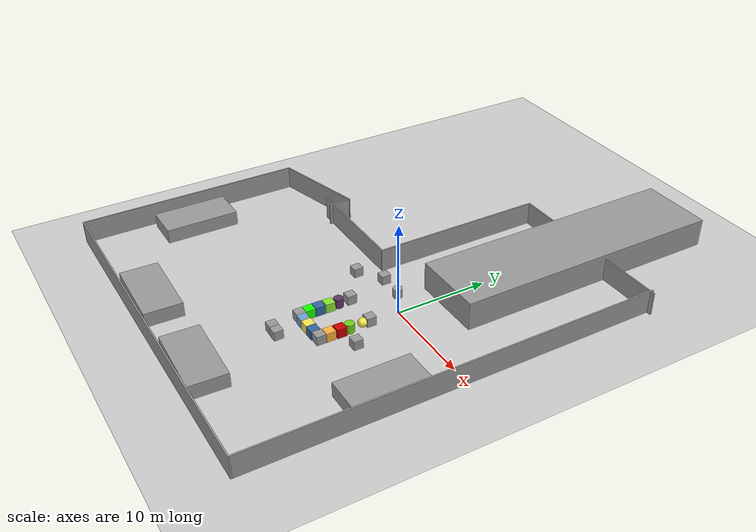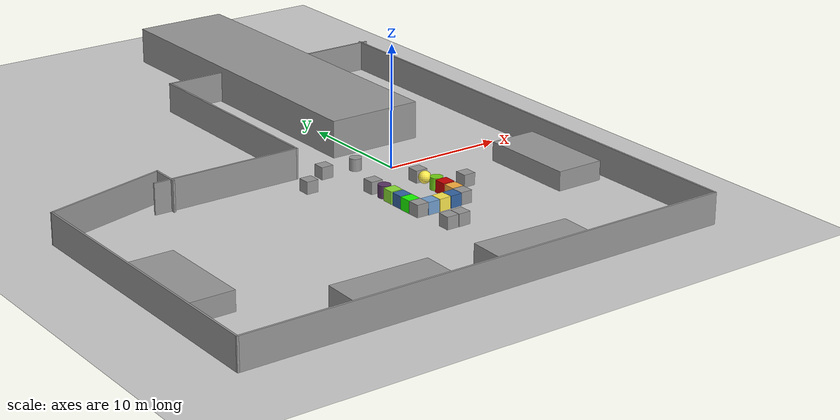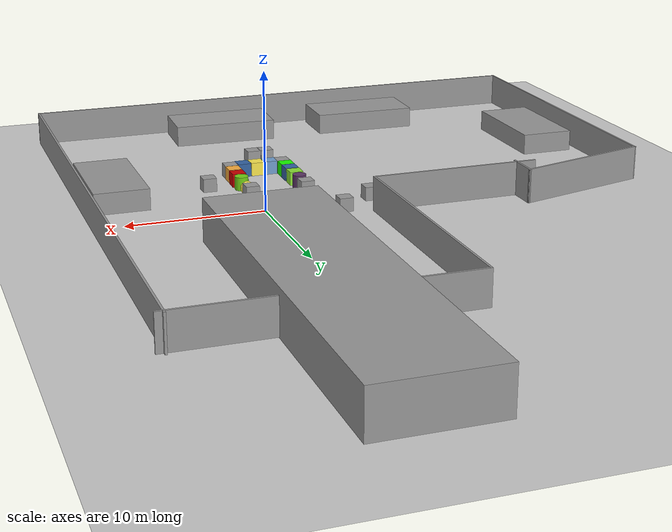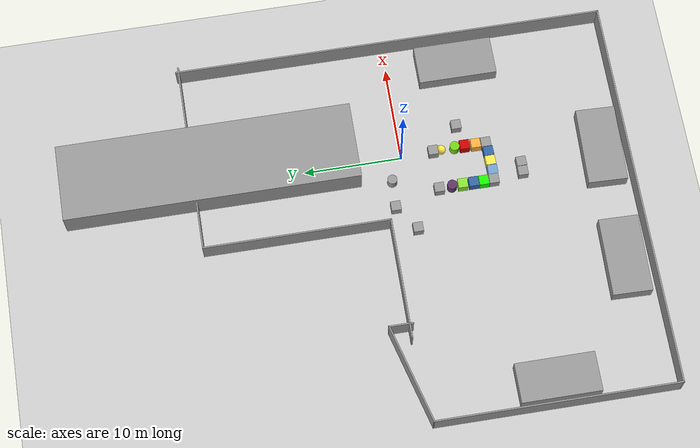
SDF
<sdf version="1.6">
 <world name="default">
  <light name="sun" type="directional">
   <pose>0 0 10 0 -0 0</pose>
   <diffuse>0.8 0.8 0.8 1</diffuse>
   <specular>0.2 0.2 0.2 1</specular>
   <attenuation>
    <range>1000</range>
    <constant>0.9</constant>
    <linear>0.01</linear>
    <quadratic>0.001</quadratic>
   </attenuation>
   <direction>-0.5 0.1 -0.9</direction>
  </light>
  <model name="ground_plane">
   <static>1</static>
   <link name="link">
    <collision name="collision">
     <geometry><plane><normal>0 0 1</normal><size>100 100</size></plane></geometry>
     <surface>
      <contact><collide_bitmask>65535</collide_bitmask></contact>
      <friction><ode><mu>100</mu><mu2>50</mu2></ode></friction>
     </surface>
    </collision>
    <visual name="visual">
     <cast_shadows>0</cast_shadows>
     <geometry><plane><normal>0 0 1</normal><size>100 100</size></plane></geometry>
     <material>
      <script><uri>file://media/materials/scripts/gazebo.material</uri><name>Gazebo/Grey</name></script>
     </material>
    </visual>
   </link>
  </model>
  <gravity>0 0 -9.8</gravity>
  <magnetic_field>6e-06 2.3e-05 -4.2e-05</magnetic_field>
  <atmosphere type="adiabatic"/>
  <physics name="default_physics" default="0" type="ode">
   <max_step_size>0.001</max_step_size>
   <real_time_factor>1</real_time_factor>
   <real_time_update_rate>1000</real_time_update_rate>
  </physics>
  <scene><ambient>0.4 0.4 0.4 1</ambient><background>0.7 0.7 0.7 1</background><shadows>1</shadows></scene>
  <audio><device>default</device></audio>
  <spherical_coordinates>
   <surface_model>EARTH_WGS84</surface_model>
   <latitude_deg>0</latitude_deg>
   <longitude_deg>0</longitude_deg>
   <elevation>0</elevation>
   <heading_deg>0</heading_deg>
  </spherical_coordinates>
  <model name="laboratorio">
   <pose>-7.79079 -0.62651 0 0 -0 0</pose>
   <link name="Wall_17">
    <collision name="Wall_17_Collision">
     <geometry><box><size>12.5 0.15 2.5</size></box></geometry>
     <pose>0 0 1.25 0 -0 0</pose>
    </collision>
    <visual name="Wall_17_Visual">
     <pose>0 0 1.25 0 -0 0</pose>
     <geometry><box><size>12.5 0.15 2.5</size></box></geometry>
     <material>
      <script><uri>file://media/materials/scripts/gazebo.material</uri><name>Gazebo/Grey</name></script>
      <ambient>1 1 1 1</ambient>
     </material>
     <meta><layer>0</layer></meta>
    </visual>
    <pose>-5.60911 2.94682 0 0 -0 0</pose>
   </link>
   <link name="Wall_18">
    <collision name="Wall_18_Collision">
     <geometry><box><size>19 0.15 2.5</size></box></geometry>
     <pose>0 0 1.25 0 -0 0</pose>
    </collision>
    <visual name="Wall_18_Visual">
     <pose>0 0 1.25 0 -0 0</pose>
     <geometry><box><size>19 0.15 2.5</size></box></geometry>
     <material>
      <script><uri>file://media/materials/scripts/gazebo.material</uri><name>Gazebo/Grey</name></script>
      <ambient>1 1 1 1</ambient>
     </material>
     <meta><layer>0</layer></meta>
    </visual>
    <pose>0.565891 12.3718 0 0 -0 1.5708</pose>
   </link>
   <link name="Wall_19">
    <collision name="Wall_19_Collision">
     <geometry><box><size>20 0.15 2.5</size></box></geometry>
     <pose>0 0 1.25 0 -0 0</pose>
    </collision>
    <visual name="Wall_19_Visual">
     <pose>0 0 1.25 0 -0 0</pose>
     <geometry><box><size>20 0.15 2.5</size></box></geometry>
     <material>
      <script><uri>file://media/materials/scripts/gazebo.material</uri><name>Gazebo/Grey</name></script>
      <ambient>1 1 1 1</ambient>
     </material>
     <meta><layer>0</layer></meta>
    </visual>
    <pose>10.4909 21.7968 0 0 -0 0</pose>
   </link>
   <link name="Wall_21">
    <collision name="Wall_21_Collision">
     <geometry><box><size>44.25 0.15 2.5</size></box></geometry>
     <pose>0 0 1.25 0 -0 0</pose>
    </collision>
    <visual name="Wall_21_Visual">
     <pose>0 0 1.25 0 -0 0</pose>
     <geometry><box><size>44.25 0.15 2.5</size></box></geometry>
     <material>
      <script><uri>file://media/materials/scripts/gazebo.material</uri><name>Gazebo/Grey</name></script>
      <ambient>1 1 1 1</ambient>
     </material>
     <meta><layer>0</layer></meta>
    </visual>
    <pose>19.951 -1e-06 0 0 -0 -1.5708</pose>
   </link>
   <link name="Wall_22">
    <collision name="Wall_22_Collision">
     <geometry><box><size>40.5 0.15 2.5</size></box></geometry>
     <pose>0 0 1.25 0 -0 0</pose>
    </collision>
    <visual name="Wall_22_Visual">
     <pose>0 0 1.25 0 -0 0</pose>
     <geometry><box><size>40.5 0.15 2.5</size></box></geometry>
     <material>
      <script><uri>file://media/materials/scripts/gazebo.material</uri><name>Gazebo/Grey</name></script>
      <ambient>1 1 1 1</ambient>
     </material>
     <meta><layer>0</layer></meta>
    </visual>
    <pose>-0.224034 -22.05 0 0 -0 3.14159</pose>
   </link>
   <link name="Wall_23">
    <collision name="Wall_23_Collision">
     <geometry><box><size>24.5 0.15 2.5</size></box></geometry>
     <pose>0 0 1.25 0 -0 0</pose>
    </collision>
    <visual name="Wall_23_Visual">
     <pose>0 0 1.25 0 -0 0</pose>
     <geometry><box><size>24.5 0.15 2.5</size></box></geometry>
     <material>
      <script><uri>file://media/materials/scripts/gazebo.material</uri><name>Gazebo/Grey</name></script>
      <ambient>1 1 1 1</ambient>
     </material>
     <meta><layer>0</layer></meta>
    </visual>
    <pose>-20.399 -9.875 0 0 -0 1.5708</pose>
   </link>
   <link name="Wall_24">
    <collision name="Wall_24_Collision">
     <geometry><box><size>10.5 0.15 2.5</size></box></geometry>
     <pose>0 0 1.25 0 -0 0</pose>
    </collision>
    <visual name="Wall_24_Visual">
     <pose>0 0 1.25 0 -0 0</pose>
     <geometry><box><size>10.5 0.15 2.5</size></box></geometry>
     <material>
      <script><uri>file://media/materials/scripts/gazebo.material</uri><name>Gazebo/Grey</name></script>
      <ambient>1 1 1 1</ambient>
     </material>
     <meta><layer>0</layer></meta>
    </visual>
    <pose>-15.4004 3.63939 0 0 -0 0.261799</pose>
   </link>
   <link name="Wall_25">
    <collision name="Wall_25_Collision">
     <geometry><box><size>2.5 0.15 2.5</size></box></geometry>
     <pose>0 0 1.25 0 -0 0</pose>
    </collision>
    <visual name="Wall_25_Visual">
     <pose>0 0 1.25 0 -0 0</pose>
     <geometry><box><size>2.5 0.15 2.5</size></box></geometry>
     <material>
      <script><uri>file://media/materials/scripts/gazebo.material</uri><name>Gazebo/Grey</name></script>
      <ambient>1 1 1 1</ambient>
     </material>
     <meta><layer>0</layer></meta>
    </visual>
    <pose>-10.4017 3.80378 0 0 -0 -1.5708</pose>
   </link>
   <static>1</static>
  </model>
  <model name="rettangolo1">
   <link name="link">
    <inertial>
     <mass>1</mass>
     <inertia>
      <ixx>0.166667</ixx>
      <ixy>0</ixy>
      <ixz>0</ixz>
      <iyy>0.166667</iyy>
      <iyz>0</iyz>
      <izz>0.166667</izz>
     </inertia>
    </inertial>
    <visual name="visual">
     <geometry><box><size>8 30 5</size></box></geometry>
     <material>
      <script><name>Gazebo/Grey</name><uri>file://media/materials/scripts/gazebo.material</uri></script>
      <shader type="vertex"><normal_map>__default__</normal_map></shader>
      <ambient>0.3 0.3 0.3 1</ambient>
      <diffuse>0.7 0.7 0.7 1</diffuse>
      <specular>0.01 0.01 0.01 1</specular>
      <emissive>0 0 0 1</emissive>
     </material>
    </visual>
    <collision name="collision">
     <geometry><box><size>1 1 1</size></box></geometry>
     <surface>
      <friction>
       <ode><mu>1</mu><mu2>1</mu2><fdir1>0 0 0</fdir1><slip1>0</slip1><slip2>0</slip2></ode>
       <torsional>
        <coefficient>1</coefficient>
        <patch_radius>0</patch_radius>
        <surface_radius>0</surface_radius>
        <use_patch_radius>1</use_patch_radius>
        <ode><slip>0</slip></ode>
       </torsional>
      </friction>
      <bounce><restitution_coefficient>0</restitution_coefficient><threshold>1e+06</threshold></bounce>
      <contact>
       <collide_without_contact>0</collide_without_contact>
       <collide_without_contact_bitmask>1</collide_without_contact_bitmask>
       <collide_bitmask>1</collide_bitmask>
       <ode>
        <soft_cfm>0</soft_cfm>
        <soft_erp>0.2</soft_erp>
        <kp>1e+13</kp>
        <kd>1</kd>
        <max_vel>0.01</max_vel>
        <min_depth>0</min_depth>
       </ode>
       <bullet>
        <split_impulse>1</split_impulse>
        <split_impulse_penetration_threshold>-0.01</split_impulse_penetration_threshold>
        <soft_cfm>0</soft_cfm>
        <soft_erp>0.2</soft_erp>
        <kp>1e+13</kp>
        <kd>1</kd>
       </bullet>
      </contact>
     </surface>
    </collision>
   </link>
   <static>0</static>
   <pose>1.66959 19.4695 0.499995 1e-05 -0 5e-06</pose>
  </model>
  <model name="scrivania">
   <link name="link">
    <inertial>
     <mass>1</mass>
     <inertia>
      <ixx>0.166667</ixx>
      <ixy>0</ixy>
      <ixz>0</ixz>
      <iyy>0.166667</iyy>
      <iyz>0</iyz>
      <izz>0.166667</izz>
     </inertia>
    </inertial>
    <visual name="visual">
     <geometry><box><size>4 8 2</size></box></geometry>
     <material>
      <script><name>Gazebo/Grey</name><uri>file://media/materials/scripts/gazebo.material</uri></script>
      <shader type="vertex"><normal_map>__default__</normal_map></shader>
      <ambient>0.3 0.3 0.3 1</ambient>
      <diffuse>0.7 0.7 0.7 1</diffuse>
      <specular>0.01 0.01 0.01 1</specular>
      <emissive>0 0 0 1</emissive>
     </material>
    </visual>
    <collision name="collision">
     <geometry><box><size>1 1 1</size></box></geometry>
     <surface>
      <friction>
       <ode><mu>1</mu><mu2>1</mu2><fdir1>0 0 0</fdir1><slip1>0</slip1><slip2>0</slip2></ode>
       <torsional>
        <coefficient>1</coefficient>
        <patch_radius>0</patch_radius>
        <surface_radius>0</surface_radius>
        <use_patch_radius>1</use_patch_radius>
        <ode><slip>0</slip></ode>
       </torsional>
      </friction>
      <bounce><restitution_coefficient>0</restitution_coefficient><threshold>1e+06</threshold></bounce>
      <contact>
       <collide_without_contact>0</collide_without_contact>
       <collide_without_contact_bitmask>1</collide_without_contact_bitmask>
       <collide_bitmask>1</collide_bitmask>
       <ode>
        <soft_cfm>0</soft_cfm>
        <soft_erp>0.2</soft_erp>
        <kp>1e+13</kp>
        <kd>1</kd>
        <max_vel>0.01</max_vel>
        <min_depth>0</min_depth>
       </ode>
       <bullet>
        <split_impulse>1</split_impulse>
        <split_impulse_penetration_threshold>-0.01</split_impulse_penetration_threshold>
        <soft_cfm>0</soft_cfm>
        <soft_erp>0.2</soft_erp>
        <kp>1e+13</kp>
        <kd>1</kd>
       </bullet>
      </contact>
     </surface>
    </collision>
   </link>
   <static>0</static>
   <pose>-25.5478 -11.0285 0.499995 1e-05 -0 5e-06</pose>
  </model>
  <model name="scrivania_clone">
   <link name="link">
    <inertial>
     <mass>1</mass>
     <inertia>
      <ixx>0.166667</ixx>
      <ixy>0</ixy>
      <ixz>0</ixz>
      <iyy>0.166667</iyy>
      <iyz>0</iyz>
      <izz>0.166667</izz>
     </inertia>
    </inertial>
    <visual name="visual">
     <geometry><box><size>4 8 2</size></box></geometry>
     <material>
      <script><name>Gazebo/Grey</name><uri>file://media/materials/scripts/gazebo.material</uri></script>
      <shader type="vertex"><normal_map>__default__</normal_map></shader>
      <ambient>0.3 0.3 0.3 1</ambient>
      <diffuse>0.7 0.7 0.7 1</diffuse>
      <specular>0.01 0.01 0.01 1</specular>
      <emissive>0 0 0 1</emissive>
     </material>
    </visual>
    <collision name="collision">
     <geometry><box><size>1 1 1</size></box></geometry>
     <surface>
      <friction>
       <ode><mu>1</mu><mu2>1</mu2><fdir1>0 0 0</fdir1><slip1>0</slip1><slip2>0</slip2></ode>
       <torsional>
        <coefficient>1</coefficient>
        <patch_radius>0</patch_radius>
        <surface_radius>0</surface_radius>
        <use_patch_radius>1</use_patch_radius>
        <ode><slip>0</slip></ode>
       </torsional>
      </friction>
      <bounce><restitution_coefficient>0</restitution_coefficient><threshold>1e+06</threshold></bounce>
      <contact>
       <collide_without_contact>0</collide_without_contact>
       <collide_without_contact_bitmask>1</collide_without_contact_bitmask>
       <collide_bitmask>1</collide_bitmask>
       <ode>
        <soft_cfm>0</soft_cfm>
        <soft_erp>0.2</soft_erp>
        <kp>1e+13</kp>
        <kd>1</kd>
        <max_vel>0.01</max_vel>
        <min_depth>0</min_depth>
       </ode>
       <bullet>
        <split_impulse>1</split_impulse>
        <split_impulse_penetration_threshold>-0.01</split_impulse_penetration_threshold>
        <soft_cfm>0</soft_cfm>
        <soft_erp>0.2</soft_erp>
        <kp>1e+13</kp>
        <kd>1</kd>
       </bullet>
      </contact>
     </surface>
    </collision>
   </link>
   <static>0</static>
   <pose>-14.2931 -20.0902 0.5 0 -0 1.54848</pose>
  </model>
  <model name="scrivania_clone_clone">
   <link name="link">
    <inertial>
     <mass>1</mass>
     <inertia>
      <ixx>0.166667</ixx>
      <ixy>0</ixy>
      <ixz>0</ixz>
      <iyy>0.166667</iyy>
      <iyz>0</iyz>
      <izz>0.166667</izz>
     </inertia>
    </inertial>
    <visual name="visual">
     <geometry><box><size>4 8 2</size></box></geometry>
     <material>
      <script><name>Gazebo/Grey</name><uri>file://media/materials/scripts/gazebo.material</uri></script>
      <shader type="vertex"><normal_map>__default__</normal_map></shader>
      <ambient>0.3 0.3 0.3 1</ambient>
      <diffuse>0.7 0.7 0.7 1</diffuse>
      <specular>0.01 0.01 0.01 1</specular>
      <emissive>0 0 0 1</emissive>
     </material>
    </visual>
    <collision name="collision">
     <geometry><box><size>1 1 1</size></box></geometry>
     <surface>
      <friction>
       <ode><mu>1</mu><mu2>1</mu2><fdir1>0 0 0</fdir1><slip1>0</slip1><slip2>0</slip2></ode>
       <torsional>
        <coefficient>1</coefficient>
        <patch_radius>0</patch_radius>
        <surface_radius>0</surface_radius>
        <use_patch_radius>1</use_patch_radius>
        <ode><slip>0</slip></ode>
       </torsional>
      </friction>
      <bounce><restitution_coefficient>0</restitution_coefficient><threshold>1e+06</threshold></bounce>
      <contact>
       <collide_without_contact>0</collide_without_contact>
       <collide_without_contact_bitmask>1</collide_without_contact_bitmask>
       <collide_bitmask>1</collide_bitmask>
       <ode>
        <soft_cfm>0</soft_cfm>
        <soft_erp>0.2</soft_erp>
        <kp>1e+13</kp>
        <kd>1</kd>
        <max_vel>0.01</max_vel>
        <min_depth>0</min_depth>
       </ode>
       <bullet>
        <split_impulse>1</split_impulse>
        <split_impulse_penetration_threshold>-0.01</split_impulse_penetration_threshold>
        <soft_cfm>0</soft_cfm>
        <soft_erp>0.2</soft_erp>
        <kp>1e+13</kp>
        <kd>1</kd>
       </bullet>
      </contact>
     </surface>
    </collision>
   </link>
   <static>0</static>
   <pose>-2.25666 -20.2061 0.499995 1e-05 -0 1.53739</pose>
  </model>
  <model name="scrivania_clone_0">
   <link name="link">
    <inertial>
     <mass>1</mass>
     <inertia>
      <ixx>0.166667</ixx>
      <ixy>0</ixy>
      <ixz>0</ixz>
      <iyy>0.166667</iyy>
      <iyz>0</iyz>
      <izz>0.166667</izz>
     </inertia>
    </inertial>
    <visual name="visual">
     <geometry><box><size>4 8 2</size></box></geometry>
     <material>
      <script><name>Gazebo/Grey</name><uri>file://media/materials/scripts/gazebo.material</uri></script>
      <shader type="vertex"><normal_map>__default__</normal_map></shader>
      <ambient>0.3 0.3 0.3 1</ambient>
      <diffuse>0.7 0.7 0.7 1</diffuse>
      <specular>0.01 0.01 0.01 1</specular>
      <emissive>0 0 0 1</emissive>
     </material>
    </visual>
    <collision name="collision">
     <geometry><box><size>1 1 1</size></box></geometry>
     <surface>
      <friction>
       <ode><mu>1</mu><mu2>1</mu2><fdir1>0 0 0</fdir1><slip1>0</slip1><slip2>0</slip2></ode>
       <torsional>
        <coefficient>1</coefficient>
        <patch_radius>0</patch_radius>
        <surface_radius>0</surface_radius>
        <use_patch_radius>1</use_patch_radius>
        <ode><slip>0</slip></ode>
       </torsional>
      </friction>
      <bounce><restitution_coefficient>0</restitution_coefficient><threshold>1e+06</threshold></bounce>
      <contact>
       <collide_without_contact>0</collide_without_contact>
       <collide_without_contact_bitmask>1</collide_without_contact_bitmask>
       <collide_bitmask>1</collide_bitmask>
       <ode>
        <soft_cfm>0</soft_cfm>
        <soft_erp>0.2</soft_erp>
        <kp>1e+13</kp>
        <kd>1</kd>
        <max_vel>0.01</max_vel>
        <min_depth>0</min_depth>
       </ode>
       <bullet>
        <split_impulse>1</split_impulse>
        <split_impulse_penetration_threshold>-0.01</split_impulse_penetration_threshold>
        <soft_cfm>0</soft_cfm>
        <soft_erp>0.2</soft_erp>
        <kp>1e+13</kp>
        <kd>1</kd>
       </bullet>
      </contact>
     </surface>
    </collision>
   </link>
   <static>0</static>
   <pose>9.46246 -7.18368 0.499995 1e-05 -0 5e-06</pose>
  </model>
  <model name="unit_box_0">
   <pose>-4.02606 -3.18197 0.499995 0 -1e-05 -5e-06</pose>
   <link name="link">
    <inertial>
     <mass>1</mass>
     <inertia>
      <ixx>0.166667</ixx>
      <ixy>0</ixy>
      <ixz>0</ixz>
      <iyy>0.166667</iyy>
      <iyz>0</iyz>
      <izz>0.166667</izz>
     </inertia>
    </inertial>
    <collision name="collision"><geometry><box><size>1 1 1</size></box></geometry></collision>
    <visual name="visual">
     <geometry><box><size>1 1 1</size></box></geometry>
     <material>
      <script><name>Gazebo/Grey</name><uri>file://media/materials/scripts/gazebo.material</uri></script>
     </material>
    </visual>
   </link>
  </model>
  <model name="unit_box_2">
   <pose>0.085112 -3.27255 0.499995 0 -1e-05 -5e-06</pose>
   <link name="link">
    <inertial>
     <mass>1</mass>
     <inertia>
      <ixx>0.166667</ixx>
      <ixy>0</ixy>
      <ixz>0</ixz>
      <iyy>0.166667</iyy>
      <iyz>0</iyz>
      <izz>0.166667</izz>
     </inertia>
    </inertial>
    <collision name="collision"><geometry><box><size>1 1 1</size></box></geometry></collision>
    <visual name="visual">
     <geometry><box><size>1 1 1</size></box></geometry>
     <material>
      <script><name>Gazebo/Grey</name><uri>file://media/materials/scripts/gazebo.material</uri></script>
     </material>
    </visual>
   </link>
  </model>
  <model name="unit_box_4">
   <pose>-3.95994 -8.79951 0.499995 0 -1e-05 -5e-06</pose>
   <link name="link">
    <inertial>
     <mass>1</mass>
     <inertia>
      <ixx>0.166667</ixx>
      <ixy>0</ixy>
      <ixz>0</ixz>
      <iyy>0.166667</iyy>
      <iyz>0</iyz>
      <izz>0.166667</izz>
     </inertia>
    </inertial>
    <collision name="collision"><geometry><box><size>1 1 1</size></box></geometry></collision>
    <visual name="visual">
     <geometry><box><size>1 1 1</size></box></geometry>
     <material>
      <script><name>Gazebo/Grey</name><uri>file://media/materials/scripts/gazebo.material</uri></script>
     </material>
    </visual>
   </link>
  </model>
  <model name="unit_box_5">
   <pose>-3.57318 -11.8659 0.499995 0 -1e-05 0.00305</pose>
   <link name="link">
    <inertial>
     <mass>1</mass>
     <inertia>
      <ixx>0.166667</ixx>
      <ixy>0</ixy>
      <ixz>0</ixz>
      <iyy>0.166667</iyy>
      <iyz>0</iyz>
      <izz>0.166667</izz>
     </inertia>
    </inertial>
    <collision name="collision"><geometry><box><size>1 1 1</size></box></geometry></collision>
    <visual name="visual">
     <geometry><box><size>1 1 1</size></box></geometry>
     <material>
      <script><name>Gazebo/Grey</name><uri>file://media/materials/scripts/gazebo.material</uri></script>
     </material>
    </visual>
   </link>
  </model>
  <model name="unit_box_7">
   <pose>-2.54153 -11.8869 0.5 0 -0 0.02524</pose>
   <link name="link">
    <inertial>
     <mass>1</mass>
     <inertia>
      <ixx>0.166667</ixx>
      <ixy>0</ixy>
      <ixz>0</ixz>
      <iyy>0.166667</iyy>
      <iyz>0</iyz>
      <izz>0.166667</izz>
     </inertia>
    </inertial>
    <collision name="collision"><geometry><box><size>1 1 1</size></box></geometry></collision>
    <visual name="visual">
     <geometry><box><size>1 1 1</size></box></geometry>
     <material>
      <script><name>Gazebo/Grey</name><uri>file://media/materials/scripts/gazebo.material</uri></script>
     </material>
    </visual>
   </link>
  </model>
  <model name="unit_box_9">
   <pose>0.124999 -8.71395 0.499995 1e-05 -0 -5e-06</pose>
   <link name="link">
    <inertial>
     <mass>1</mass>
     <inertia>
      <ixx>0.166667</ixx>
      <ixy>0</ixy>
      <ixz>0</ixz>
      <iyy>0.166667</iyy>
      <iyz>0</iyz>
      <izz>0.166667</izz>
     </inertia>
    </inertial>
    <collision name="collision"><geometry><box><size>1 1 1</size></box></geometry></collision>
    <visual name="visual">
     <geometry><box><size>1 1 1</size></box></geometry>
     <material>
      <script><name>Gazebo/Grey</name><uri>file://media/materials/scripts/gazebo.material</uri></script>
     </material>
    </visual>
   </link>
  </model>
  <model name="unit_box_11">
   <pose>2.51598 -6.05857 0.499995 -0 -1e-05 9.1e-05</pose>
   <link name="link">
    <inertial>
     <mass>1</mass>
     <inertia>
      <ixx>0.166667</ixx>
      <ixy>0</ixy>
      <ixz>0</ixz>
      <iyy>0.166667</iyy>
      <iyz>0</iyz>
      <izz>0.166667</izz>
     </inertia>
    </inertial>
    <collision name="collision"><geometry><box><size>1 1 1</size></box></geometry></collision>
    <visual name="visual">
     <geometry><box><size>1 1 1</size></box></geometry>
     <material>
      <script><name>Gazebo/Grey</name><uri>file://media/materials/scripts/gazebo.material</uri></script>
     </material>
    </visual>
   </link>
  </model>
  <model name="unit_cylinder_1">
   <pose>-2.45009 1.36151 0.499998 3e-06 -4e-06 0</pose>
   <link name="link">
    <inertial>
     <mass>1</mass>
     <inertia><ixx>0.145833</ixx><ixy>0</ixy><ixz>0</ixz><iyy>0.145833</iyy><iyz>0</iyz><izz>0.125</izz></inertia>
    </inertial>
    <collision name="collision">
     <geometry><cylinder><radius>0.5</radius><length>1</length></cylinder></geometry>
    </collision>
    <visual name="visual">
     <geometry><cylinder><radius>0.5</radius><length>1</length></cylinder></geometry>
     <material>
      <script><name>Gazebo/Grey</name><uri>file://media/materials/scripts/gazebo.material</uri></script>
     </material>
    </visual>
   </link>
  </model>
  <model name="unit_box_13">
   <pose>-5.31311 1.48083 0.499995 0 -1e-05 0</pose>
   <link name="link">
    <inertial>
     <mass>1</mass>
     <inertia>
      <ixx>0.166667</ixx>
      <ixy>0</ixy>
      <ixz>0</ixz>
      <iyy>0.166667</iyy>
      <iyz>0</iyz>
      <izz>0.166667</izz>
     </inertia>
    </inertial>
    <collision name="collision"><geometry><box><size>1 1 1</size></box></geometry></collision>
    <visual name="visual">
     <geometry><box><size>1 1 1</size></box></geometry>
     <material>
      <script><name>Gazebo/Grey</name><uri>file://media/materials/scripts/gazebo.material</uri></script>
     </material>
    </visual>
   </link>
  </model>
  <model name="unit_box_15">
   <pose>-7.90418 -0.339537 0.499995 1e-05 -0 0</pose>
   <link name="link">
    <inertial>
     <mass>1</mass>
     <inertia>
      <ixx>0.166667</ixx>
      <ixy>0</ixy>
      <ixz>0</ixz>
      <iyy>0.166667</iyy>
      <iyz>0</iyz>
      <izz>0.166667</izz>
     </inertia>
    </inertial>
    <collision name="collision"><geometry><box><size>1 1 1</size></box></geometry></collision>
    <visual name="visual">
     <geometry><box><size>1 1 1</size></box></geometry>
     <material>
      <script><name>Gazebo/Grey</name><uri>file://media/materials/scripts/gazebo.material</uri></script>
     </material>
    </visual>
   </link>
  </model>
  <model name="unit_box_10">
   <link name="link">
    <inertial>
     <mass>1</mass>
     <inertia>
      <ixx>0.166667</ixx>
      <ixy>0</ixy>
      <ixz>0</ixz>
      <iyy>0.166667</iyy>
      <iyz>0</iyz>
      <izz>0.166667</izz>
     </inertia>
    </inertial>
    <visual name="visual">
     <geometry><box><size>1 1 1</size></box></geometry>
     <material>
      <script><name>Gazebo/Grey</name><uri>file://media/materials/scripts/gazebo.material</uri></script>
      <shader type="vertex"><normal_map>__default__</normal_map></shader>
      <ambient>0.988 0.686 0.243 1</ambient>
      <diffuse>0.7 0.7 0.7 1</diffuse>
      <specular>0.01 0.01 0.01 1</specular>
      <emissive>0 0 0 1</emissive>
     </material>
    </visual>
    <collision name="collision">
     <geometry><box><size>1 1 1</size></box></geometry>
     <surface>
      <friction>
       <ode><mu>1</mu><mu2>1</mu2><fdir1>0 0 0</fdir1><slip1>0</slip1><slip2>0</slip2></ode>
       <torsional>
        <coefficient>1</coefficient>
        <patch_radius>0</patch_radius>
        <surface_radius>0</surface_radius>
        <use_patch_radius>1</use_patch_radius>
        <ode><slip>0</slip></ode>
       </torsional>
      </friction>
      <bounce><restitution_coefficient>0</restitution_coefficient><threshold>1e+06</threshold></bounce>
      <contact>
       <collide_without_contact>0</collide_without_contact>
       <collide_without_contact_bitmask>1</collide_without_contact_bitmask>
       <collide_bitmask>1</collide_bitmask>
       <ode>
        <soft_cfm>0</soft_cfm>
        <soft_erp>0.2</soft_erp>
        <kp>1e+13</kp>
        <kd>1</kd>
        <max_vel>0.01</max_vel>
        <min_depth>0</min_depth>
       </ode>
       <bullet>
        <split_impulse>1</split_impulse>
        <split_impulse_penetration_threshold>-0.01</split_impulse_penetration_threshold>
        <soft_cfm>0</soft_cfm>
        <soft_erp>0.2</soft_erp>
        <kp>1e+13</kp>
        <kd>1</kd>
       </bullet>
      </contact>
     </surface>
    </collision>
   </link>
   <static>0</static>
   <pose>0.144236 -7.67349 0.499995 0 1e-05 8.1e-05</pose>
  </model>
  <model name="unit_sphere">
   <link name="link">
    <inertial>
     <mass>1</mass>
     <inertia><ixx>0.1</ixx><ixy>0</ixy><ixz>0</ixz><iyy>0.1</iyy><iyz>0</iyz><izz>0.1</izz></inertia>
    </inertial>
    <visual name="visual">
     <geometry><sphere><radius>0.5</radius></sphere></geometry>
     <material>
      <script><name>Gazebo/Grey</name><uri>file://media/materials/scripts/gazebo.material</uri></script>
      <ambient>0.988 0.914 0.31 1</ambient>
      <shader type="vertex"><normal_map>__default__</normal_map></shader>
      <diffuse>0.7 0.7 0.7 1</diffuse>
      <specular>0.01 0.01 0.01 1</specular>
      <emissive>0 0 0 1</emissive>
     </material>
    </visual>
    <collision name="collision">
     <geometry><sphere><radius>0.5</radius></sphere></geometry>
     <surface>
      <friction>
       <ode><mu>1</mu><mu2>1</mu2><fdir1>0 0 0</fdir1><slip1>0</slip1><slip2>0</slip2></ode>
       <torsional>
        <coefficient>1</coefficient>
        <patch_radius>0</patch_radius>
        <surface_radius>0</surface_radius>
        <use_patch_radius>1</use_patch_radius>
        <ode><slip>0</slip></ode>
       </torsional>
      </friction>
      <bounce><restitution_coefficient>0</restitution_coefficient><threshold>1e+06</threshold></bounce>
      <contact>
       <collide_without_contact>0</collide_without_contact>
       <collide_without_contact_bitmask>1</collide_without_contact_bitmask>
       <collide_bitmask>1</collide_bitmask>
       <ode>
        <soft_cfm>0</soft_cfm>
        <soft_erp>0.2</soft_erp>
        <kp>1e+13</kp>
        <kd>1</kd>
        <max_vel>0.01</max_vel>
        <min_depth>0</min_depth>
       </ode>
       <bullet>
        <split_impulse>1</split_impulse>
        <split_impulse_penetration_threshold>-0.01</split_impulse_penetration_threshold>
        <soft_cfm>0</soft_cfm>
        <soft_erp>0.2</soft_erp>
        <kp>1e+13</kp>
        <kd>1</kd>
       </bullet>
      </contact>
     </surface>
    </collision>
   </link>
   <static>0</static>
   <pose>0.14115 -4.08488 0.5 0 -0 0</pose>
  </model>
  <model name="unit_box_16">
   <link name="link">
    <inertial>
     <mass>1</mass>
     <inertia>
      <ixx>0.166667</ixx>
      <ixy>0</ixy>
      <ixz>0</ixz>
      <iyy>0.166667</iyy>
      <iyz>0</iyz>
      <izz>0.166667</izz>
     </inertia>
    </inertial>
    <visual name="visual">
     <geometry><box><size>1 1 1</size></box></geometry>
     <material>
      <script><name>Gazebo/Grey</name><uri>file://media/materials/scripts/gazebo.material</uri></script>
      <ambient>0.8 0 0 1</ambient>
      <shader type="vertex"><normal_map>__default__</normal_map></shader>
      <diffuse>0.7 0.7 0.7 1</diffuse>
      <specular>0.01 0.01 0.01 1</specular>
      <emissive>0 0 0 1</emissive>
     </material>
    </visual>
    <collision name="collision">
     <geometry><box><size>1 1 1</size></box></geometry>
     <surface>
      <friction>
       <ode><mu>1</mu><mu2>1</mu2><fdir1>0 0 0</fdir1><slip1>0</slip1><slip2>0</slip2></ode>
       <torsional>
        <coefficient>1</coefficient>
        <patch_radius>0</patch_radius>
        <surface_radius>0</surface_radius>
        <use_patch_radius>1</use_patch_radius>
        <ode><slip>0</slip></ode>
       </torsional>
      </friction>
      <bounce><restitution_coefficient>0</restitution_coefficient><threshold>1e+06</threshold></bounce>
      <contact>
       <collide_without_contact>0</collide_without_contact>
       <collide_without_contact_bitmask>1</collide_without_contact_bitmask>
       <collide_bitmask>1</collide_bitmask>
       <ode>
        <soft_cfm>0</soft_cfm>
        <soft_erp>0.2</soft_erp>
        <kp>1e+13</kp>
        <kd>1</kd>
        <max_vel>0.01</max_vel>
        <min_depth>0</min_depth>
       </ode>
       <bullet>
        <split_impulse>1</split_impulse>
        <split_impulse_penetration_threshold>-0.01</split_impulse_penetration_threshold>
        <soft_cfm>0</soft_cfm>
        <soft_erp>0.2</soft_erp>
        <kp>1e+13</kp>
        <kd>1</kd>
       </bullet>
      </contact>
     </surface>
    </collision>
   </link>
   <static>0</static>
   <pose>0.168794 -6.53409 0.499995 1e-05 -0 0</pose>
  </model>
  <model name="unit_box_8">
   <link name="link">
    <inertial>
     <mass>1</mass>
     <inertia>
      <ixx>0.166667</ixx>
      <ixy>0</ixy>
      <ixz>0</ixz>
      <iyy>0.166667</iyy>
      <iyz>0</iyz>
      <izz>0.166667</izz>
     </inertia>
    </inertial>
    <visual name="visual">
     <geometry><box><size>1 1 1</size></box></geometry>
     <material>
      <script><name>Gazebo/Grey</name><uri>file://media/materials/scripts/gazebo.material</uri></script>
      <ambient>0.204 0.396 0.643 1</ambient>
      <shader type="vertex"><normal_map>__default__</normal_map></shader>
      <diffuse>0.7 0.7 0.7 1</diffuse>
      <specular>0.01 0.01 0.01 1</specular>
      <emissive>0 0 0 1</emissive>
     </material>
    </visual>
    <collision name="collision">
     <geometry><box><size>1 1 1</size></box></geometry>
     <surface>
      <friction>
       <ode><mu>1</mu><mu2>1</mu2><fdir1>0 0 0</fdir1><slip1>0</slip1><slip2>0</slip2></ode>
       <torsional>
        <coefficient>1</coefficient>
        <patch_radius>0</patch_radius>
        <surface_radius>0</surface_radius>
        <use_patch_radius>1</use_patch_radius>
        <ode><slip>0</slip></ode>
       </torsional>
      </friction>
      <bounce><restitution_coefficient>0</restitution_coefficient><threshold>1e+06</threshold></bounce>
      <contact>
       <collide_without_contact>0</collide_without_contact>
       <collide_without_contact_bitmask>1</collide_without_contact_bitmask>
       <collide_bitmask>1</collide_bitmask>
       <ode>
        <soft_cfm>0</soft_cfm>
        <soft_erp>0.2</soft_erp>
        <kp>1e+13</kp>
        <kd>1</kd>
        <max_vel>0.01</max_vel>
        <min_depth>0</min_depth>
       </ode>
       <bullet>
        <split_impulse>1</split_impulse>
        <split_impulse_penetration_threshold>-0.01</split_impulse_penetration_threshold>
        <soft_cfm>0</soft_cfm>
        <soft_erp>0.2</soft_erp>
        <kp>1e+13</kp>
        <kd>1</kd>
       </bullet>
      </contact>
     </surface>
    </collision>
   </link>
   <static>0</static>
   <pose>-0.900412 -8.81122 0.499995 -1e-05 -0 0.0252</pose>
  </model>
  <model name="unit_box_6">
   <link name="link">
    <inertial>
     <mass>1</mass>
     <inertia>
      <ixx>0.166667</ixx>
      <ixy>0</ixy>
      <ixz>0</ixz>
      <iyy>0.166667</iyy>
      <iyz>0</iyz>
      <izz>0.166667</izz>
     </inertia>
    </inertial>
    <visual name="visual">
     <geometry><box><size>1 1 1</size></box></geometry>
     <material>
      <script><name>Gazebo/Grey</name><uri>file://media/materials/scripts/gazebo.material</uri></script>
      <ambient>0.988 0.914 0.31 1</ambient>
      <shader type="vertex"><normal_map>__default__</normal_map></shader>
      <diffuse>0.7 0.7 0.7 1</diffuse>
      <specular>0.01 0.01 0.01 1</specular>
      <emissive>0 0 0 1</emissive>
     </material>
    </visual>
    <collision name="collision">
     <geometry><box><size>1 1 1</size></box></geometry>
     <surface>
      <friction>
       <ode><mu>1</mu><mu2>1</mu2><fdir1>0 0 0</fdir1><slip1>0</slip1><slip2>0</slip2></ode>
       <torsional>
        <coefficient>1</coefficient>
        <patch_radius>0</patch_radius>
        <surface_radius>0</surface_radius>
        <use_patch_radius>1</use_patch_radius>
        <ode><slip>0</slip></ode>
       </torsional>
      </friction>
      <bounce><restitution_coefficient>0</restitution_coefficient><threshold>1e+06</threshold></bounce>
      <contact>
       <collide_without_contact>0</collide_without_contact>
       <collide_without_contact_bitmask>1</collide_without_contact_bitmask>
       <collide_bitmask>1</collide_bitmask>
       <ode>
        <soft_cfm>0</soft_cfm>
        <soft_erp>0.2</soft_erp>
        <kp>1e+13</kp>
        <kd>1</kd>
        <max_vel>0.01</max_vel>
        <min_depth>0</min_depth>
       </ode>
       <bullet>
        <split_impulse>1</split_impulse>
        <split_impulse_penetration_threshold>-0.01</split_impulse_penetration_threshold>
        <soft_cfm>0</soft_cfm>
        <soft_erp>0.2</soft_erp>
        <kp>1e+13</kp>
        <kd>1</kd>
       </bullet>
      </contact>
     </surface>
    </collision>
   </link>
   <static>0</static>
   <pose>-1.92705 -8.82875 0.499995 -1e-05 -0 0.025472</pose>
  </model>
  <model name="unit_cylinder">
   <link name="link">
    <inertial>
     <mass>1</mass>
     <inertia><ixx>0.145833</ixx><ixy>0</ixy><ixz>0</ixz><iyy>0.145833</iyy><iyz>0</iyz><izz>0.125</izz></inertia>
    </inertial>
    <visual name="visual">
     <geometry><cylinder><radius>0.5</radius><length>1</length></cylinder></geometry>
     <material>
      <script><name>Gazebo/Grey</name><uri>file://media/materials/scripts/gazebo.material</uri></script>
      <ambient>0.361 0.208 0.4 1</ambient>
      <shader type="vertex"><normal_map>__default__</normal_map></shader>
      <diffuse>0.7 0.7 0.7 1</diffuse>
      <specular>0.01 0.01 0.01 1</specular>
      <emissive>0 0 0 1</emissive>
     </material>
    </visual>
    <collision name="collision">
     <geometry><cylinder><radius>0.5</radius><length>1</length></cylinder></geometry>
     <surface>
      <friction>
       <ode><mu>1</mu><mu2>1</mu2><fdir1>0 0 0</fdir1><slip1>0</slip1><slip2>0</slip2></ode>
       <torsional>
        <coefficient>1</coefficient>
        <patch_radius>0</patch_radius>
        <surface_radius>0</surface_radius>
        <use_patch_radius>1</use_patch_radius>
        <ode><slip>0</slip></ode>
       </torsional>
      </friction>
      <bounce><restitution_coefficient>0</restitution_coefficient><threshold>1e+06</threshold></bounce>
      <contact>
       <collide_without_contact>0</collide_without_contact>
       <collide_without_contact_bitmask>1</collide_without_contact_bitmask>
       <collide_bitmask>1</collide_bitmask>
       <ode>
        <soft_cfm>0</soft_cfm>
        <soft_erp>0.2</soft_erp>
        <kp>1e+13</kp>
        <kd>1</kd>
        <max_vel>0.01</max_vel>
        <min_depth>0</min_depth>
       </ode>
       <bullet>
        <split_impulse>1</split_impulse>
        <split_impulse_penetration_threshold>-0.01</split_impulse_penetration_threshold>
        <soft_cfm>0</soft_cfm>
        <soft_erp>0.2</soft_erp>
        <kp>1e+13</kp>
        <kd>1</kd>
       </bullet>
      </contact>
     </surface>
    </collision>
   </link>
   <static>0</static>
   <pose>-3.96521 -4.52405 0.5 0 0 -0.025417</pose>
  </model>
  <model name="unit_cylinder_0">
   <link name="link">
    <inertial>
     <mass>1</mass>
     <inertia><ixx>0.145833</ixx><ixy>0</ixy><ixz>0</ixz><iyy>0.145833</iyy><iyz>0</iyz><izz>0.125</izz></inertia>
    </inertial>
    <visual name="visual">
     <geometry><cylinder><radius>0.5</radius><length>1</length></cylinder></geometry>
     <material>
      <script><name>Gazebo/Grey</name><uri>file://media/materials/scripts/gazebo.material</uri></script>
      <ambient>0.451 0.824 0.086 1</ambient>
      <shader type="vertex"><normal_map>__default__</normal_map></shader>
      <diffuse>0.7 0.7 0.7 1</diffuse>
      <specular>0.01 0.01 0.01 1</specular>
      <emissive>0 0 0 1</emissive>
     </material>
    </visual>
    <collision name="collision">
     <geometry><cylinder><radius>0.5</radius><length>1</length></cylinder></geometry>
     <surface>
      <friction>
       <ode><mu>1</mu><mu2>1</mu2><fdir1>0 0 0</fdir1><slip1>0</slip1><slip2>0</slip2></ode>
       <torsional>
        <coefficient>1</coefficient>
        <patch_radius>0</patch_radius>
        <surface_radius>0</surface_radius>
        <use_patch_radius>1</use_patch_radius>
        <ode><slip>0</slip></ode>
       </torsional>
      </friction>
      <bounce><restitution_coefficient>0</restitution_coefficient><threshold>1e+06</threshold></bounce>
      <contact>
       <collide_without_contact>0</collide_without_contact>
       <collide_without_contact_bitmask>1</collide_without_contact_bitmask>
       <collide_bitmask>1</collide_bitmask>
       <ode>
        <soft_cfm>0</soft_cfm>
        <soft_erp>0.2</soft_erp>
        <kp>1e+13</kp>
        <kd>1</kd>
        <max_vel>0.01</max_vel>
        <min_depth>0</min_depth>
       </ode>
       <bullet>
        <split_impulse>1</split_impulse>
        <split_impulse_penetration_threshold>-0.01</split_impulse_penetration_threshold>
        <soft_cfm>0</soft_cfm>
        <soft_erp>0.2</soft_erp>
        <kp>1e+13</kp>
        <kd>1</kd>
       </bullet>
      </contact>
     </surface>
    </collision>
   </link>
   <static>0</static>
   <pose>0.163355 -5.51119 0.5 0 -0 0</pose>
  </model>
  <model name="unit_box_12">
   <link name="link">
    <inertial>
     <mass>1</mass>
     <inertia>
      <ixx>0.166667</ixx>
      <ixy>0</ixy>
      <ixz>0</ixz>
      <iyy>0.166667</iyy>
      <iyz>0</iyz>
      <izz>0.166667</izz>
     </inertia>
    </inertial>
    <visual name="visual">
     <geometry><box><size>1 1 1</size></box></geometry>
     <material>
      <script><name>Gazebo/Grey</name><uri>file://media/materials/scripts/gazebo.material</uri></script>
      <ambient>0.541 0.886 0.204 1</ambient>
      <shader type="vertex"><normal_map>__default__</normal_map></shader>
      <diffuse>0.7 0.7 0.7 1</diffuse>
      <specular>0.01 0.01 0.01 1</specular>
      <emissive>0 0 0 1</emissive>
     </material>
    </visual>
    <collision name="collision">
     <geometry><box><size>1 1 1</size></box></geometry>
     <surface>
      <friction>
       <ode><mu>1</mu><mu2>1</mu2><fdir1>0 0 0</fdir1><slip1>0</slip1><slip2>0</slip2></ode>
       <torsional>
        <coefficient>1</coefficient>
        <patch_radius>0</patch_radius>
        <surface_radius>0</surface_radius>
        <use_patch_radius>1</use_patch_radius>
        <ode><slip>0</slip></ode>
       </torsional>
      </friction>
      <bounce><restitution_coefficient>0</restitution_coefficient><threshold>1e+06</threshold></bounce>
      <contact>
       <collide_without_contact>0</collide_without_contact>
       <collide_without_contact_bitmask>1</collide_without_contact_bitmask>
       <collide_bitmask>1</collide_bitmask>
       <ode>
        <soft_cfm>0</soft_cfm>
        <soft_erp>0.2</soft_erp>
        <kp>1e+13</kp>
        <kd>1</kd>
        <max_vel>0.01</max_vel>
        <min_depth>0</min_depth>
       </ode>
       <bullet>
        <split_impulse>1</split_impulse>
        <split_impulse_penetration_threshold>-0.01</split_impulse_penetration_threshold>
        <soft_cfm>0</soft_cfm>
        <soft_erp>0.2</soft_erp>
        <kp>1e+13</kp>
        <kd>1</kd>
       </bullet>
      </contact>
     </surface>
    </collision>
   </link>
   <static>0</static>
   <pose>-3.96029 -5.6099 0.499996 -2e-06 8e-06 -0.023611</pose>
  </model>
  <model name="unit_box">
   <link name="link">
    <inertial>
     <mass>1</mass>
     <inertia>
      <ixx>0.166667</ixx>
      <ixy>0</ixy>
      <ixz>0</ixz>
      <iyy>0.166667</iyy>
      <iyz>0</iyz>
      <izz>0.166667</izz>
     </inertia>
    </inertial>
    <visual name="visual">
     <geometry><box><size>1 1 1</size></box></geometry>
     <material>
      <script><name>Gazebo/Grey</name><uri>file://media/materials/scripts/gazebo.material</uri></script>
      <ambient>0.204 0.396 0.643 1</ambient>
      <shader type="vertex"><normal_map>__default__</normal_map></shader>
      <diffuse>0.7 0.7 0.7 1</diffuse>
      <specular>0.01 0.01 0.01 1</specular>
      <emissive>0 0 0 1</emissive>
     </material>
    </visual>
    <collision name="collision">
     <geometry><box><size>1 1 1</size></box></geometry>
     <surface>
      <friction>
       <ode><mu>1</mu><mu2>1</mu2><fdir1>0 0 0</fdir1><slip1>0</slip1><slip2>0</slip2></ode>
       <torsional>
        <coefficient>1</coefficient>
        <patch_radius>0</patch_radius>
        <surface_radius>0</surface_radius>
        <use_patch_radius>1</use_patch_radius>
        <ode><slip>0</slip></ode>
       </torsional>
      </friction>
      <bounce><restitution_coefficient>0</restitution_coefficient><threshold>1e+06</threshold></bounce>
      <contact>
       <collide_without_contact>0</collide_without_contact>
       <collide_without_contact_bitmask>1</collide_without_contact_bitmask>
       <collide_bitmask>1</collide_bitmask>
       <ode>
        <soft_cfm>0</soft_cfm>
        <soft_erp>0.2</soft_erp>
        <kp>1e+13</kp>
        <kd>1</kd>
        <max_vel>0.01</max_vel>
        <min_depth>0</min_depth>
       </ode>
       <bullet>
        <split_impulse>1</split_impulse>
        <split_impulse_penetration_threshold>-0.01</split_impulse_penetration_threshold>
        <soft_cfm>0</soft_cfm>
        <soft_erp>0.2</soft_erp>
        <kp>1e+13</kp>
        <kd>1</kd>
       </bullet>
      </contact>
     </surface>
    </collision>
   </link>
   <static>0</static>
   <pose>-3.96296 -6.73457 0.499995 -1e-05 -0 0.000805</pose>
  </model>
  <model name="unit_box_1">
   <link name="link">
    <inertial>
     <mass>1</mass>
     <inertia>
      <ixx>0.166667</ixx>
      <ixy>0</ixy>
      <ixz>0</ixz>
      <iyy>0.166667</iyy>
      <iyz>0</iyz>
      <izz>0.166667</izz>
     </inertia>
    </inertial>
    <visual name="visual">
     <geometry><box><size>1 1 1</size></box></geometry>
     <material>
      <script><name>Gazebo/Grey</name><uri>file://media/materials/scripts/gazebo.material</uri></script>
      <ambient>0.098 1 0 1</ambient>
      <shader type="vertex"><normal_map>__default__</normal_map></shader>
      <diffuse>0.7 0.7 0.7 1</diffuse>
      <specular>0.01 0.01 0.01 1</specular>
      <emissive>0 0 0 1</emissive>
     </material>
    </visual>
    <collision name="collision">
     <geometry><box><size>1 1 1</size></box></geometry>
     <surface>
      <friction>
       <ode><mu>1</mu><mu2>1</mu2><fdir1>0 0 0</fdir1><slip1>0</slip1><slip2>0</slip2></ode>
       <torsional>
        <coefficient>1</coefficient>
        <patch_radius>0</patch_radius>
        <surface_radius>0</surface_radius>
        <use_patch_radius>1</use_patch_radius>
        <ode><slip>0</slip></ode>
       </torsional>
      </friction>
      <bounce><restitution_coefficient>0</restitution_coefficient><threshold>1e+06</threshold></bounce>
      <contact>
       <collide_without_contact>0</collide_without_contact>
       <collide_without_contact_bitmask>1</collide_without_contact_bitmask>
       <collide_bitmask>1</collide_bitmask>
       <ode>
        <soft_cfm>0</soft_cfm>
        <soft_erp>0.2</soft_erp>
        <kp>1e+13</kp>
        <kd>1</kd>
        <max_vel>0.01</max_vel>
        <min_depth>0</min_depth>
       </ode>
       <bullet>
        <split_impulse>1</split_impulse>
        <split_impulse_penetration_threshold>-0.01</split_impulse_penetration_threshold>
        <soft_cfm>0</soft_cfm>
        <soft_erp>0.2</soft_erp>
        <kp>1e+13</kp>
        <kd>1</kd>
       </bullet>
      </contact>
     </surface>
    </collision>
   </link>
   <static>0</static>
   <pose>-3.97537 -7.77429 0.499995 1e-05 -0 0</pose>
  </model>
  <model name="unit_box_3">
   <link name="link">
    <inertial>
     <mass>1</mass>
     <inertia>
      <ixx>0.166667</ixx>
      <ixy>0</ixy>
      <ixz>0</ixz>
      <iyy>0.166667</iyy>
      <iyz>0</iyz>
      <izz>0.166667</izz>
     </inertia>
    </inertial>
    <visual name="visual">
     <geometry><box><size>1 1 1</size></box></geometry>
     <material>
      <script><name>Gazebo/Grey</name><uri>file://media/materials/scripts/gazebo.material</uri></script>
      <ambient>0.447 0.624 0.812 1</ambient>
      <shader type="vertex"><normal_map>__default__</normal_map></shader>
      <diffuse>0.7 0.7 0.7 1</diffuse>
      <specular>0.01 0.01 0.01 1</specular>
      <emissive>0 0 0 1</emissive>
     </material>
    </visual>
    <collision name="collision">
     <geometry><box><size>1 1 1</size></box></geometry>
     <surface>
      <friction>
       <ode><mu>1</mu><mu2>1</mu2><fdir1>0 0 0</fdir1><slip1>0</slip1><slip2>0</slip2></ode>
       <torsional>
        <coefficient>1</coefficient>
        <patch_radius>0</patch_radius>
        <surface_radius>0</surface_radius>
        <use_patch_radius>1</use_patch_radius>
        <ode><slip>0</slip></ode>
       </torsional>
      </friction>
      <bounce><restitution_coefficient>0</restitution_coefficient><threshold>1e+06</threshold></bounce>
      <contact>
       <collide_without_contact>0</collide_without_contact>
       <collide_without_contact_bitmask>1</collide_without_contact_bitmask>
       <collide_bitmask>1</collide_bitmask>
       <ode>
        <soft_cfm>0</soft_cfm>
        <soft_erp>0.2</soft_erp>
        <kp>1e+13</kp>
        <kd>1</kd>
        <max_vel>0.01</max_vel>
        <min_depth>0</min_depth>
       </ode>
       <bullet>
        <split_impulse>1</split_impulse>
        <split_impulse_penetration_threshold>-0.01</split_impulse_penetration_threshold>
        <soft_cfm>0</soft_cfm>
        <soft_erp>0.2</soft_erp>
        <kp>1e+13</kp>
        <kd>1</kd>
       </bullet>
      </contact>
     </surface>
    </collision>
   </link>
   <static>0</static>
   <pose>-2.96342 -8.85046 0.499995 1e-05 -0 0</pose>
  </model>
  <light name="user_point_light_0" type="point">
   <pose>-0.483759 -2.02463 1 0 -0 0</pose>
   <diffuse>0.5 0.5 0.5 1</diffuse>
   <specular>0.1 0.1 0.1 1</specular>
   <attenuation>
    <range>20</range>
    <constant>0.5</constant>
    <linear>0.01</linear>
    <quadratic>0.001</quadratic>
   </attenuation>
   <cast_shadows>0</cast_shadows>
   <direction>0 0 -1</direction>
  </light>
  <light name="user_point_light_1" type="point">
   <pose>-3.47112 -1.47234 1 0 -0 0</pose>
   <diffuse>0.5 0.5 0.5 1</diffuse>
   <specular>0.1 0.1 0.1 1</specular>
   <attenuation>
    <range>20</range>
    <constant>0.5</constant>
    <linear>0.01</linear>
    <quadratic>0.001</quadratic>
   </attenuation>
   <cast_shadows>0</cast_shadows>
   <direction>0 0 -1</direction>
  </light>
  <light name="user_point_light_2" type="point">
   <pose>-0.920485 2.85472 1 0 -0 0</pose>
   <diffuse>0.5 0.5 0.5 1</diffuse>
   <specular>0.1 0.1 0.1 1</specular>
   <attenuation>
    <range>20</range>
    <constant>0.5</constant>
    <linear>0.01</linear>
    <quadratic>0.001</quadratic>
   </attenuation>
   <cast_shadows>0</cast_shadows>
   <direction>0 0 -1</direction>
  </light>
 </world>
</sdf>
